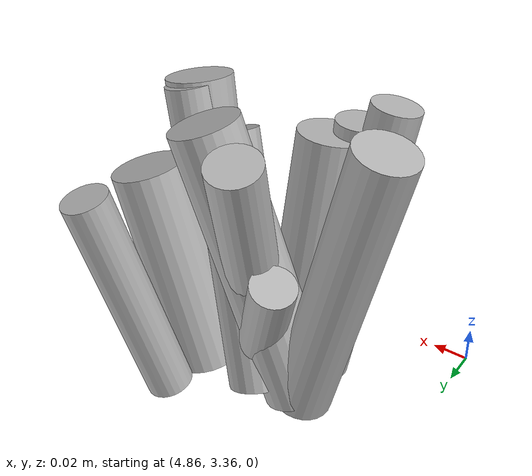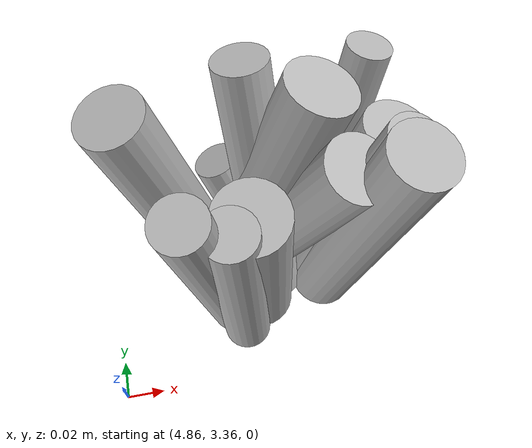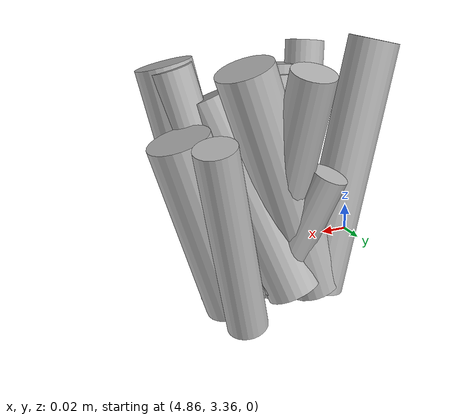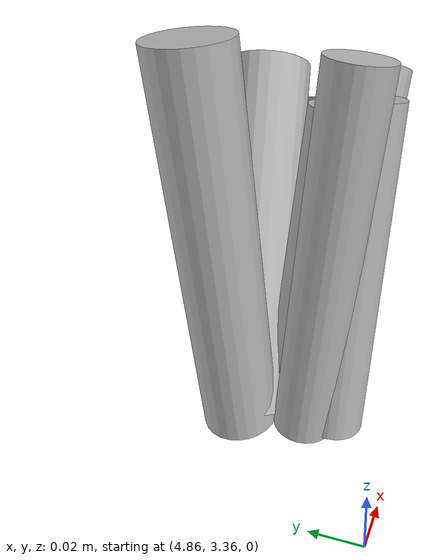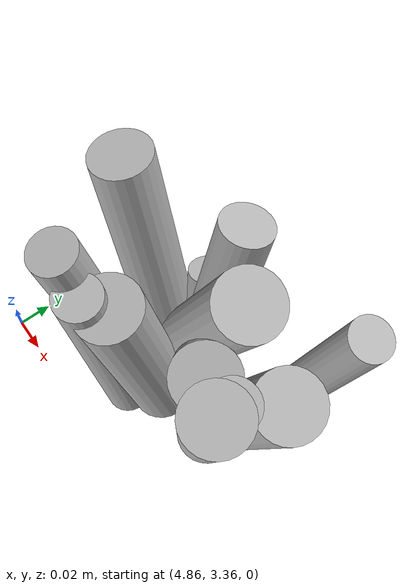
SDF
<sdf version="1.6">
 <world name="default">
  <model name="tussocks">
   <static>true</static>
   <link name="tuft33_0">
    <pose>4.9409 3.3985 0.0649 0 0.1684 4.4262</pose>
    <visual name="tuft33_0_v">
     <geometry><cylinder><radius>0.0187</radius><length>0.1411</length></cylinder></geometry>
     <material>
      <script>
       <uri>model://bushfire/materials/scripts</uri>
       <uri>model://bushfire/materials/textures</uri>
       <name>Bushfire/Tussock</name>
      </script>
     </material>
    </visual>
   </link>
   <link name="tuft33_1">
    <pose>4.9948 3.4147 0.0724 0 0.2734 5.8275</pose>
    <visual name="tuft33_1_v">
     <geometry><cylinder><radius>0.0138</radius><length>0.1573</length></cylinder></geometry>
     <material>
      <script>
       <uri>model://bushfire/materials/scripts</uri>
       <uri>model://bushfire/materials/textures</uri>
       <name>Bushfire/Tussock</name>
      </script>
     </material>
    </visual>
   </link>
   <link name="tuft33_2">
    <pose>5.0031 3.4360 0.0546 0 0.2995 0.0055</pose>
    <visual name="tuft33_2_v">
     <geometry><cylinder><radius>0.0199</radius><length>0.1187</length></cylinder></geometry>
     <material>
      <script>
       <uri>model://bushfire/materials/scripts</uri>
       <uri>model://bushfire/materials/textures</uri>
       <name>Bushfire/Tussock</name>
      </script>
     </material>
    </visual>
   </link>
   <link name="tuft33_3">
    <pose>5.0038 3.4762 0.0583 0 0.2723 0.6625</pose>
    <visual name="tuft33_3_v">
     <geometry><cylinder><radius>0.0128</radius><length>0.1268</length></cylinder></geometry>
     <material>
      <script>
       <uri>model://bushfire/materials/scripts</uri>
       <uri>model://bushfire/materials/textures</uri>
       <name>Bushfire/Foliage2</name>
      </script>
     </material>
    </visual>
   </link>
   <link name="tuft33_4">
    <pose>4.9530 3.4359 0.0743 0 0.3358 0.1210</pose>
    <visual name="tuft33_4_v">
     <geometry><cylinder><radius>0.0190</radius><length>0.1614</length></cylinder></geometry>
     <material>
      <script>
       <uri>model://bushfire/materials/scripts</uri>
       <uri>model://bushfire/materials/textures</uri>
       <name>Bushfire/Tussock</name>
      </script>
     </material>
    </visual>
   </link>
   <link name="tuft33_5">
    <pose>4.9683 3.4237 0.0644 0 0.4166 5.6502</pose>
    <visual name="tuft33_5_v">
     <geometry><cylinder><radius>0.0183</radius><length>0.1399</length></cylinder></geometry>
     <material>
      <script>
       <uri>model://bushfire/materials/scripts</uri>
       <uri>model://bushfire/materials/textures</uri>
       <name>Bushfire/Foliage2</name>
      </script>
     </material>
    </visual>
   </link>
   <link name="tuft33_6">
    <pose>4.9991 3.4059 0.0726 0 0.2410 5.7190</pose>
    <visual name="tuft33_6_v">
     <geometry><cylinder><radius>0.0183</radius><length>0.1577</length></cylinder></geometry>
     <material>
      <script>
       <uri>model://bushfire/materials/scripts</uri>
       <uri>model://bushfire/materials/textures</uri>
       <name>Bushfire/Tussock</name>
      </script>
     </material>
    </visual>
   </link>
   <link name="tuft33_7">
    <pose>4.9302 3.3850 0.0673 0 0.1086 4.3076</pose>
    <visual name="tuft33_7_v">
     <geometry><cylinder><radius>0.0133</radius><length>0.1462</length></cylinder></geometry>
     <material>
      <script>
       <uri>model://bushfire/materials/scripts</uri>
       <uri>model://bushfire/materials/textures</uri>
       <name>Bushfire/Tussock</name>
      </script>
     </material>
    </visual>
   </link>
   <link name="tuft33_8">
    <pose>4.9427 3.4431 0.0414 0 0.4097 2.4659</pose>
    <visual name="tuft33_8_v">
     <geometry><cylinder><radius>0.0124</radius><length>0.0900</length></cylinder></geometry>
     <material>
      <script>
       <uri>model://bushfire/materials/scripts</uri>
       <uri>model://bushfire/materials/textures</uri>
       <name>Bushfire/Foliage2</name>
      </script>
     </material>
    </visual>
   </link>
   <link name="tuft33_9">
    <pose>4.9175 3.3912 0.0747 0 0.2061 4.0541</pose>
    <visual name="tuft33_9_v">
     <geometry><cylinder><radius>0.0135</radius><length>0.1625</length></cylinder></geometry>
     <material>
      <script>
       <uri>model://bushfire/materials/scripts</uri>
       <uri>model://bushfire/materials/textures</uri>
       <name>Bushfire/Foliage2</name>
      </script>
     </material>
    </visual>
   </link>
   <link name="tuft33_10">
    <pose>4.9045 3.4321 0.0782 0 0.2346 3.2178</pose>
    <visual name="tuft33_10_v">
     <geometry><cylinder><radius>0.0168</radius><length>0.1699</length></cylinder></geometry>
     <material>
      <script>
       <uri>model://bushfire/materials/scripts</uri>
       <uri>model://bushfire/materials/textures</uri>
       <name>Bushfire/Foliage2</name>
      </script>
     </material>
    </visual>
   </link>
   <link name="tuft33_11">
    <pose>4.9506 3.4407 0.0732 0 0.2842 1.8200</pose>
    <visual name="tuft33_11_v">
     <geometry><cylinder><radius>0.0145</radius><length>0.1592</length></cylinder></geometry>
     <material>
      <script>
       <uri>model://bushfire/materials/scripts</uri>
       <uri>model://bushfire/materials/textures</uri>
       <name>Bushfire/Tussock</name>
      </script>
     </material>
    </visual>
   </link>
  </model>
 </world>
</sdf>
